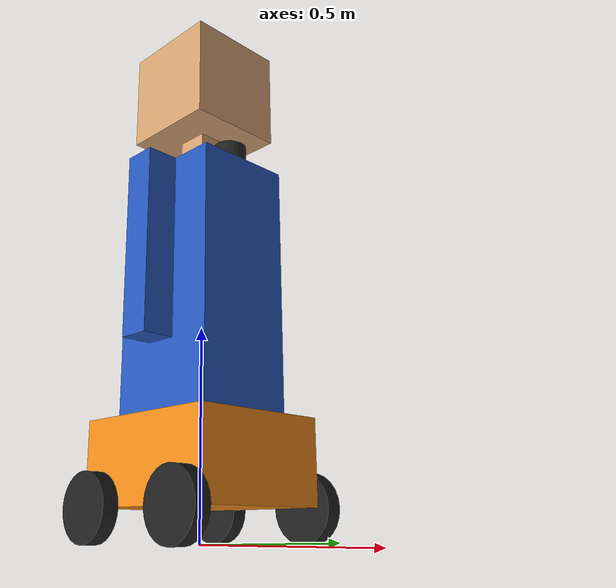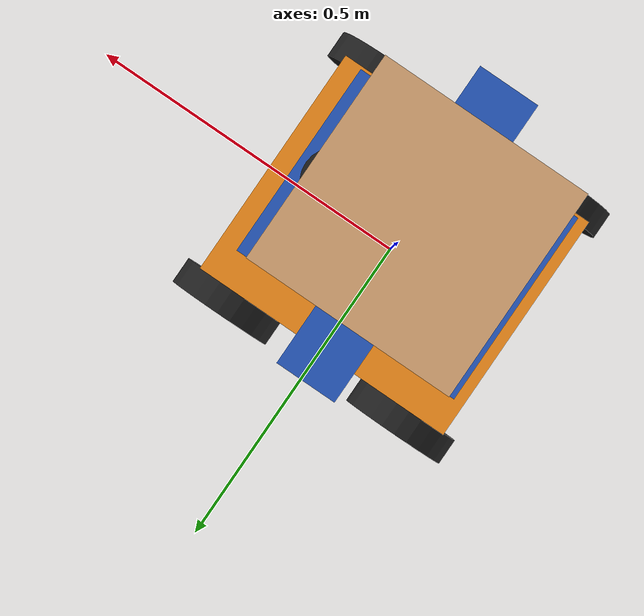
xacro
<?xml version="1.0"?>
<robot name="lastmile_bot" xmlns:xacro="http://www.ros.org/wiki/xacro">

  <xacro:property name="wheel_radius" value="0.08"/>
  <xacro:property name="wheel_width" value="0.04"/>
  <xacro:property name="wheel_y_offset" value="0.195"/>  <!-- half chassis width + half wheel width -->
  <xacro:property name="rear_x" value="-0.15"/>
  <xacro:property name="front_x" value="0.15"/>

  <xacro:property name="chassis_x" value="0.40"/>
  <xacro:property name="chassis_y" value="0.35"/>
  <xacro:property name="chassis_z" value="0.20"/>
  <xacro:property name="chassis_bottom" value="${wheel_radius}"/>

  <xacro:property name="torso_x" value="0.30"/>
  <xacro:property name="torso_y" value="0.25"/>
  <xacro:property name="torso_z" value="0.62"/>
  <xacro:property name="torso_bottom" value="${chassis_bottom + chassis_z}"/>

  <xacro:property name="neck_x" value="0.08"/>
  <xacro:property name="neck_y" value="0.08"/>
  <xacro:property name="neck_z" value="0.10"/>
  <xacro:property name="neck_bottom" value="${torso_bottom + torso_z}"/>

  <xacro:property name="head_size" value="0.25"/>
  <xacro:property name="head_bottom" value="${neck_bottom + neck_z}"/>

  <xacro:property name="arm_x" value="0.08"/>
  <xacro:property name="arm_y" value="0.08"/>
  <xacro:property name="arm_z" value="0.45"/>
  <xacro:property name="shoulder_z" value="${torso_bottom + torso_z}"/>
  <xacro:property name="shoulder_y" value="${torso_y/2 + arm_y/2}"/>

  <material name="lastmile_blue"><color rgba="0.15 0.35 0.75 1"/></material>
  <material name="lastmile_skin"><color rgba="0.85 0.65 0.45 1"/></material>
  <material name="lastmile_dark"><color rgba="0.12 0.12 0.12 1"/></material>
  <material name="lastmile_hi"><color rgba="0.95 0.55 0.10 1"/></material>

  <!-- ===================== base ===================== -->
  <link name="base_footprint"/>

  <link name="base_link">
    <visual>
      <origin xyz="0 0 ${chassis_bottom + chassis_z/2}"/>
      <geometry><box size="${chassis_x} ${chassis_y} ${chassis_z}"/></geometry>
      <material name="lastmile_hi"/>
    </visual>
    <collision>
      <origin xyz="0 0 ${chassis_bottom + chassis_z/2}"/>
      <geometry><box size="${chassis_x} ${chassis_y} ${chassis_z}"/></geometry>
    </collision>
    <inertial>
      <origin xyz="0 0 ${chassis_bottom + chassis_z/2}"/>
      <mass value="8.0"/>
      <inertia ixx="0.10" ixy="0" ixz="0" iyy="0.12" iyz="0" izz="0.15"/>
    </inertial>
  </link>

  <joint name="base_footprint_joint" type="fixed">
    <parent link="base_footprint"/>
    <child link="base_link"/>
    <origin xyz="0 0 0"/>
  </joint>

  <!-- ===================== wheels ===================== -->
  <xacro:macro name="wheel_link" params="name">
    <link name="${name}">
      <visual>
        <origin rpy="1.5708 0 0"/>
        <geometry><cylinder radius="${wheel_radius}" length="${wheel_width}"/></geometry>
        <material name="lastmile_dark"/>
      </visual>
      <collision>
        <origin rpy="1.5708 0 0"/>
        <geometry><cylinder radius="${wheel_radius}" length="${wheel_width}"/></geometry>
      </collision>
      <inertial>
        <mass value="0.6"/>
        <inertia ixx="0.001" ixy="0" ixz="0" iyy="0.001" iyz="0" izz="0.001"/>
      </inertial>
    </link>
  </xacro:macro>

  <xacro:macro name="wheel_joint" params="name x y">
    <joint name="${name}_joint" type="continuous">
      <parent link="base_link"/>
      <child link="${name}"/>
      <origin xyz="${x} ${y} ${wheel_radius}"/>
      <axis xyz="0 1 0"/>
    </joint>
  </xacro:macro>

  <xacro:wheel_link name="rear_left_wheel"/>
  <xacro:wheel_link name="rear_right_wheel"/>
  <xacro:wheel_link name="front_left_wheel"/>
  <xacro:wheel_link name="front_right_wheel"/>

  <!-- driven -->
  <xacro:wheel_joint name="rear_left_wheel"  x="${rear_x}"  y="${wheel_y_offset}"/>
  <xacro:wheel_joint name="rear_right_wheel" x="${rear_x}"  y="-${wheel_y_offset}"/>
  <!-- free-rolling: continuous joints exist but no plugin drives them -->
  <xacro:wheel_joint name="front_left_wheel"  x="${front_x}" y="${wheel_y_offset}"/>
  <xacro:wheel_joint name="front_right_wheel" x="${front_x}" y="-${wheel_y_offset}"/>

  <!-- ===================== torso ===================== -->
  <link name="torso_link">
    <visual>
      <origin xyz="0 0 ${torso_z/2}"/>
      <geometry><box size="${torso_x} ${torso_y} ${torso_z}"/></geometry>
      <material name="lastmile_blue"/>
    </visual>
    <collision>
      <origin xyz="0 0 ${torso_z/2}"/>
      <geometry><box size="${torso_x} ${torso_y} ${torso_z}"/></geometry>
    </collision>
    <inertial>
      <origin xyz="0 0 ${torso_z/2}"/>
      <mass value="4.0"/>
      <inertia ixx="0.08" ixy="0" ixz="0" iyy="0.08" iyz="0" izz="0.05"/>
    </inertial>
  </link>
  <joint name="torso_joint" type="fixed">
    <parent link="base_link"/>
    <child link="torso_link"/>
    <origin xyz="0 0 ${torso_bottom}"/>
  </joint>

  <!-- ===================== neck + head ===================== -->
  <link name="neck_link">
    <visual>
      <origin xyz="0 0 ${neck_z/2}"/>
      <geometry><box size="${neck_x} ${neck_y} ${neck_z}"/></geometry>
      <material name="lastmile_skin"/>
    </visual>
    <collision>
      <origin xyz="0 0 ${neck_z/2}"/>
      <geometry><box size="${neck_x} ${neck_y} ${neck_z}"/></geometry>
    </collision>
    <inertial>
      <origin xyz="0 0 ${neck_z/2}"/>
      <mass value="0.2"/>
      <inertia ixx="0.0005" ixy="0" ixz="0" iyy="0.0005" iyz="0" izz="0.0005"/>
    </inertial>
  </link>
  <joint name="neck_joint" type="continuous">
    <parent link="torso_link"/>
    <child link="neck_link"/>
    <origin xyz="0 0 ${torso_z}"/>
    <axis xyz="0 0 1"/>  <!-- pan -->
  </joint>

  <link name="head_link">
    <visual>
      <origin xyz="0 0 ${head_size/2}"/>
      <geometry><box size="${head_size} ${head_size} ${head_size}"/></geometry>
      <material name="lastmile_skin"/>
    </visual>
    <collision>
      <origin xyz="0 0 ${head_size/2}"/>
      <geometry><box size="${head_size} ${head_size} ${head_size}"/></geometry>
    </collision>
    <inertial>
      <origin xyz="0 0 ${head_size/2}"/>
      <mass value="0.5"/>
      <inertia ixx="0.003" ixy="0" ixz="0" iyy="0.003" iyz="0" izz="0.003"/>
    </inertial>
  </link>
  <joint name="head_joint" type="fixed">
    <parent link="neck_link"/>
    <child link="head_link"/>
    <origin xyz="0 0 ${neck_z}"/>
  </joint>

  <!-- ===================== arms ===================== -->
  <xacro:macro name="arm" params="side y_sign">
    <link name="${side}_arm_link">
      <visual>
        <origin xyz="0 0 -${arm_z/2}"/>
        <geometry><box size="${arm_x} ${arm_y} ${arm_z}"/></geometry>
        <material name="lastmile_blue"/>
      </visual>
      <collision>
        <origin xyz="0 0 -${arm_z/2}"/>
        <geometry><box size="${arm_x} ${arm_y} ${arm_z}"/></geometry>
      </collision>
      <inertial>
        <origin xyz="0 0 -${arm_z/2}"/>
        <mass value="0.4"/>
        <inertia ixx="0.002" ixy="0" ixz="0" iyy="0.002" iyz="0" izz="0.0005"/>
      </inertial>
    </link>
    <joint name="${side}_shoulder_joint" type="continuous">
      <parent link="torso_link"/>
      <child link="${side}_arm_link"/>
      <origin xyz="0 ${y_sign * shoulder_y} ${shoulder_z - torso_bottom}"/>
      <axis xyz="1 0 0"/>  <!-- swing forward/back -->
    </joint>
  </xacro:macro>

  <xacro:arm side="left"  y_sign="1"/>
  <xacro:arm side="right" y_sign="-1"/>

  <!-- ===================== lidar (Nav2/AMCL requirement) ===================== -->
  <link name="lidar_link">
    <visual>
      <geometry><cylinder radius="0.04" length="0.05"/></geometry>
      <material name="lastmile_dark"/>
    </visual>
    <collision>
      <geometry><cylinder radius="0.04" length="0.05"/></geometry>
    </collision>
    <inertial>
      <mass value="0.1"/>
      <inertia ixx="0.0001" ixy="0" ixz="0" iyy="0.0001" iyz="0" izz="0.0001"/>
    </inertial>
  </link>
  <joint name="lidar_joint" type="fixed">
    <parent link="torso_link"/>
    <child link="lidar_link"/>
    <origin xyz="0.10 0 ${torso_z + 0.025}"/>
  </joint>

  <!-- ===================== Gazebo plugins ===================== -->
  <gazebo>
    <plugin name="diff_drive" filename="libgazebo_ros_diff_drive.so">
      <ros><namespace>/</namespace></ros>
      <left_joint>rear_left_wheel_joint</left_joint>
      <right_joint>rear_right_wheel_joint</right_joint>
      <wheel_separation>${2*wheel_y_offset}</wheel_separation>
      <wheel_diameter>${2*wheel_radius}</wheel_diameter>
      <max_wheel_torque>25</max_wheel_torque>
      <max_wheel_acceleration>1.5</max_wheel_acceleration>
      <command_topic>cmd_vel</command_topic>
      <publish_odom>true</publish_odom>
      <publish_odom_tf>true</publish_odom_tf>
      <publish_wheel_tf>false</publish_wheel_tf>
      <odometry_topic>odom</odometry_topic>
      <odometry_frame>odom</odometry_frame>
      <robot_base_frame>base_footprint</robot_base_frame>
    </plugin>
  </gazebo>

  <gazebo reference="lidar_link">
    <sensor type="ray" name="lidar_sensor">
      <pose>0 0 0 0 0 0</pose>
      <visualize>false</visualize>
      <update_rate>5</update_rate>
      <ray>
        <scan>
          <horizontal>
            <samples>360</samples>
            <resolution>1</resolution>
            <min_angle>-3.14159</min_angle>
            <max_angle>3.14159</max_angle>
          </horizontal>
        </scan>
        <range><min>0.12</min><max>10.0</max><resolution>0.015</resolution></range>
        <noise><type>gaussian</type><mean>0.0</mean><stddev>0.01</stddev></noise>
      </ray>
      <plugin name="lidar_plugin" filename="libgazebo_ros_ray_sensor.so">
        <ros><remapping>~/out:=scan</remapping></ros>
        <output_type>sensor_msgs/LaserScan</output_type>
        <frame_name>lidar_link</frame_name>
      </plugin>
    </sensor>
  </gazebo>

  <gazebo>
    <plugin name="joint_pose_trajectory" filename="libgazebo_ros_joint_pose_trajectory.so">
      <ros><remapping>set_joint_trajectory:=lastmile_bot/joint_trajectory</remapping></ros>
      <update_rate>10</update_rate>
    </plugin>
  </gazebo>

</robot>
